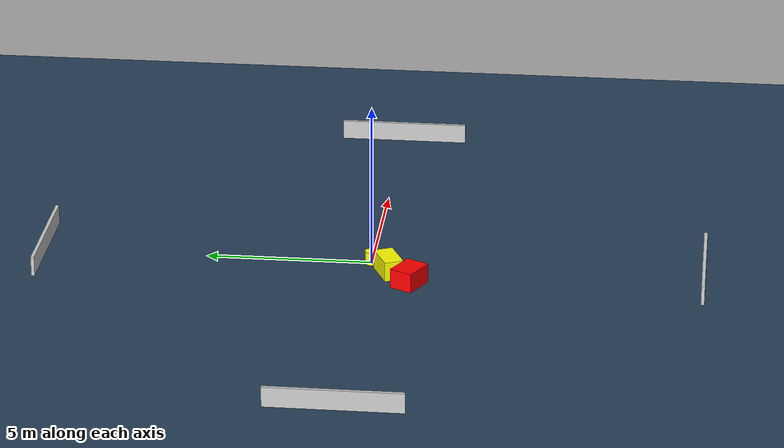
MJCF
<?xml version="1.0" ?>
<mujoco model="generated_environment">
  <option timestep="0.01" integrator="RK4" cone="elliptic"/>
  <default>
    <geom density="1"/>
  </default>
  <asset>
    <texture builtin="gradient" height="3072" name="skybox" rgb1="0.3 0.5 0.7" rgb2="0 0 0" type="skybox" width="512"/>
    <texture builtin="checker" height="300" name="groundplane" rgb1="0.2 0.3 0.4" rgb2="0.1 0.2 0.3" type="2d" width="300"/>
    <material name="groundplane" reflectance="0.2" texrepeat="5 5" texture="groundplane"/>
  </asset>
  <worldbody>
    <light dir="0 0 -1" directional="true" pos="0 0 1.5"/>
    <geom condim="3" friction="0.5 0.005 0.001" material="groundplane" name="floor" pos="0 0 0" size="0 0 0.05" type="plane"/>
    <body name="walls">
      <geom name="wall_1" condim="4" pos="-10.0 0.0 0.3" rgba="0.800000011920929 0.800000011920929 0.800000011920929 1.0" size="0.05 2.0 0.3" type="box"/>
      <geom name="wall_2" condim="4" pos="10.0 0.0 0.3" rgba="0.800000011920929 0.800000011920929 0.800000011920929 1.0" size="0.05 2.0 0.3" type="box"/>
      <geom name="wall_3" condim="4" pos="0.0 -10.0 0.3" rgba="0.800000011920929 0.800000011920929 0.800000011920929 1.0" size="2.0 0.05 0.3" type="box"/>
      <geom name="wall_4" condim="4" pos="0.0 10.0 0.3" rgba="0.800000011920929 0.800000011920929 0.800000011920929 1.0" size="2.0 0.05 0.3" type="box"/>
    </body>
    <body name="robot">
      <joint name="joint_x" type="slide" pos="0 0 0" axis="1 0 0"/>
      <joint name="joint_y" type="slide" pos="0 0 0" axis="0 1 0"/>
      <geom name="robot" type="cylinder" pos="0.0 0.0 0.2" size="0.2 0.2 0.0" mass="5.0" friction="1.0 0.005 0.0001" condim="4" rgba="1.0 1.0 0.0 1.0"/>
    </body>
    <body name="obstacle_1_movable">
      <geom name="obstacle_1_movable" condim="4" pos="-0.7268142442511373 -0.5843092845246913 0.3" euler="0 0 24.603160830499668" friction="0.0 0.005 0.001" rgba="1.0 1.0 0.0 1.0" size="0.517906103288468 0.292450937694152 0.3" type="box" mass="0.1"/>
      <joint type="free"/>
    </body>
    <body name="obstacle_2_static">
      <geom name="obstacle_2_static" condim="4" pos="-1.4724876107591511 -1.2772168717631753 0.3" euler="0 0 152.07317296765123" friction="0.0 0.005 0.001" rgba="1.0 0.0 0.0 1.0" size="0.47527116022278565 0.3632430030630797 0.3" type="box"/>
    </body>
  </worldbody>
  <actuator>
    <motor name="actuator_x" joint="joint_x" gear="1" ctrlrange="-1 1"/>
    <motor name="actuator_y" joint="joint_y" gear="1" ctrlrange="-1 1"/>
  </actuator>
</mujoco>
